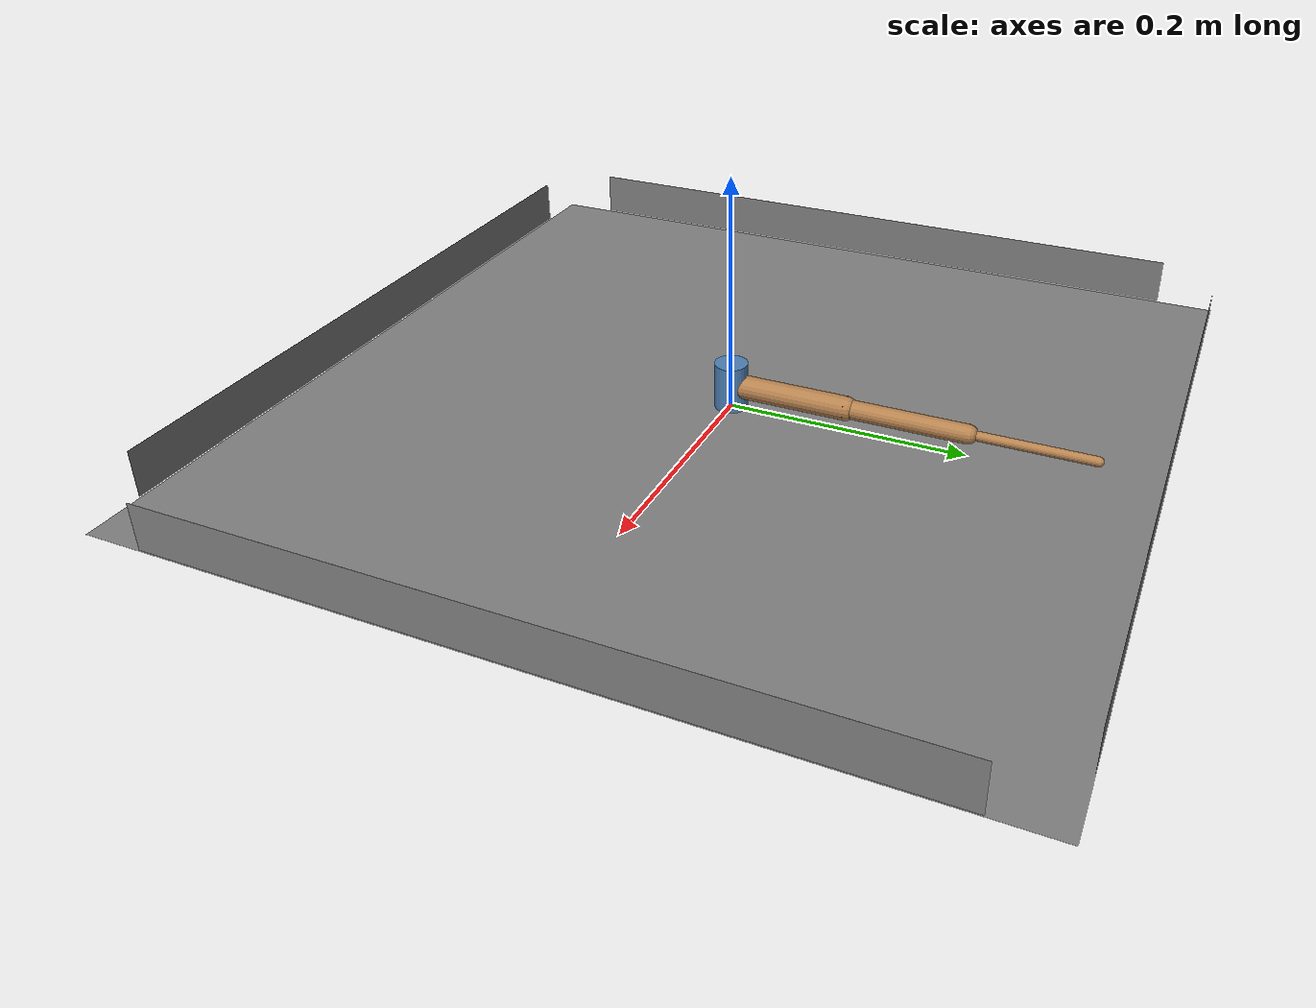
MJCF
<mujoco model="planar point mass">

  <option timestep="0.01" cone="elliptic" iterations="200">
    <flag gravity="enable"/>
  </option>

  <default>
    <geom solimp="0 0.9 0.01" solref=".02 1"/>
    <joint type="hinge" axis="0 -1 0"/>
    <motor ctrllimited="true" ctrlrange="-1 1"/>
  </default>

  <visual>
    <headlight ambient=".4 .4 .4" diffuse=".8 .8 .8" specular="0.1 0.1 0.1"/>
    <map znear=".01"/>
    <quality shadowsize="2048"/>
  </visual>

  <asset>
      <texture name="skybox" type="skybox" builtin="gradient" rgb1=".4 .6 .8" rgb2="0 0 0"
               width="800" height="800" mark="random" markrgb="1 1 1"/>
  </asset>

  <asset>
    <texture name="grid" type="2d" builtin="checker" rgb1=".1 .2 .3" rgb2=".2 .3 .4" width="300" height="300" mark="edge" markrgb=".2 .3 .4"/>
    <material name="grid" texture="grid" texrepeat="1 1" texuniform="true" reflectance=".2"/>
    <material name="self" rgba=".7 .5 .3 1"/>
    <material name="self_default" rgba=".7 .5 .3 1"/>
    <material name="self_highlight" rgba="0 .5 .3 1"/>
    <material name="effector" rgba=".7 .4 .2 1"/>
    <material name="effector_default" rgba=".7 .4 .2 1"/>
    <material name="effector_highlight" rgba="0 .5 .3 1"/>
    <material name="decoration" rgba=".3 .5 .7 1"/>
    <material name="eye" rgba="0 .2 1 1"/>
    <material name="target" rgba=".6 .3 .3 1"/>
    <material name="target_default" rgba=".6 .3 .3 1"/>
    <material name="target_highlight" rgba=".6 .3 .3 .4"/>
  </asset>

  <worldbody>
    <light name="light" pos="0 0 1"/>
    <camera name="fixed" pos="0 0 .75" quat="1 0 0 0"/>
    <geom name="ground" type="plane" pos="0 0 0" size=".35 .35 .1"/>
    <geom name="wall_x" type="plane" pos="-.35 0 .02" zaxis="1 0 0"  size=".02 .3 .02"/>
    <geom name="wall_y" type="plane" pos="0 -.35 .02" zaxis="0 1 0"  size=".3 .02 .02"/>
    <geom name="wall_neg_x" type="plane" pos=".35 0 .02" zaxis="-1 0 0"  size=".02 .3 .02"/>
    <geom name="wall_neg_y" type="plane" pos="0 .35 .02" zaxis="0 -1 0"  size=".3 .02 .02"/>

   <body name="proximal" pos="0 0 0.02" quat="0.7071 0.7071 0 0">
      <geom name="proximal_decoration" type="cylinder" fromto="0 -0.02 0 0 0.02 0" size=".014" material="decoration"/>
      <joint name="proximal" range="-130 -60" ref="-90" damping="0.05" limited="false"/>
      <geom name="proximal" type="capsule" material="self" size=".01" fromto="0 0 0 0 0 -.10" contype="1" conaffinity="0"/>
      <body name="distal" pos="0 0 -.1">
        <joint name="distal" range="-45 45" damping="0.5" limited="false"/>
        <geom name="distal" type="capsule" size=".008" material="self" fromto="0 0 0 0 0 -.10" contype="1" conaffinity="0"/>
        <body name="distal2" pos="0 0 -.1">
          <joint name="distal2" range="-45 45" damping="0.5" limited="false"/>
          <geom name="distal2" type="capsule" size=".004" material="self" fromto="0 0 0 0 0 -.10" contype="1" conaffinity="0"/>
        </body>
      </body>
    </body>

  </worldbody>

  <actuator>
    <motor name="proximal" joint="proximal" gear="1"/>
    <motor name="distal" joint="distal" gear="0.5"/>
    <motor name="distal2" joint="distal2" gear="0.25"/>
  </actuator>
</mujoco>
